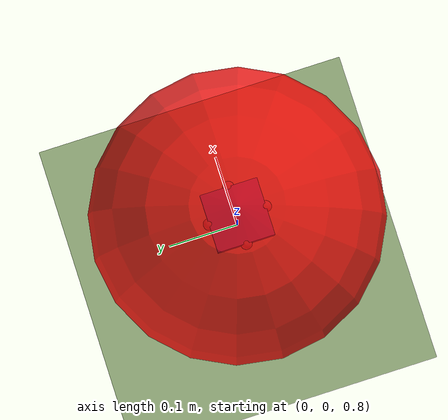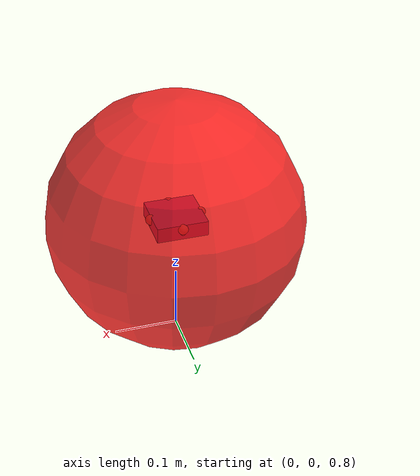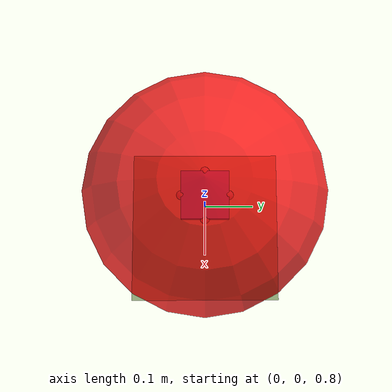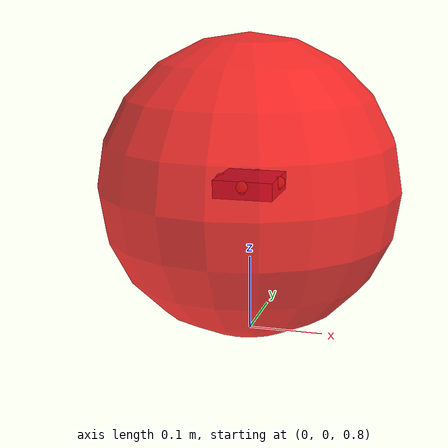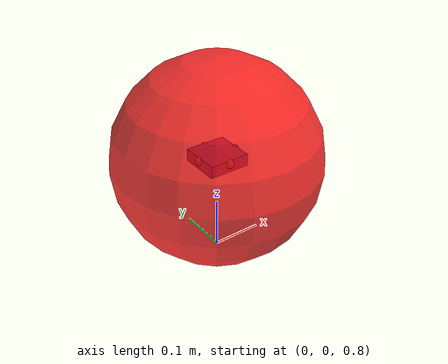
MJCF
<!-- Crazyflie-inspired quadrotor model for MuJoCo
     Mass: 27g, arm length: 39.7mm, T/W: 2.25
     + configuration: rotors at ±X, ±Y
-->
<mujoco model="quadrotor">

  <option gravity="0 0 -9.81" timestep="0.002" integrator="RK4"/>

  <default>
    <geom contype="0" conaffinity="0"/>  <!-- drone has no collision by default -->
  </default>

  <visual>
    <headlight ambient="0.4 0.4 0.4" diffuse="0.8 0.8 0.8" specular="0.1 0.1 0.1"/>
    <rgba haze="0.15 0.25 0.35 1"/>
  </visual>

  <worldbody>
    <!-- Directional light -->
    <light name="sun" directional="true" pos="0 0 5" dir="0 -0.3 -1"
           ambient="0.3 0.3 0.3" diffuse="0.8 0.8 0.8" specular="0.2 0.2 0.2"/>

    <!-- Ground plane (visual only for rendering) -->
    <geom name="floor" type="plane" size="5 5 0.1" rgba="0.6 0.7 0.5 1"
          contype="1" conaffinity="1"/>

    <!-- Target marker (mocap body — move via data.mocap_pos[0]) -->
    <body name="target" pos="0 0 1" mocap="true">
      <geom name="target_geom" type="sphere" size="0.2"
            rgba="1 0 0 0.8" contype="0" conaffinity="0"/>
    </body>

    <!-- Drone body (free joint = 6DOF) -->
    <body name="drone" pos="0 0 1">
      <freejoint name="root"/>
      <inertial mass="0.027"
                 pos="0 0 0"
                 diaginertia="1.4e-5 1.4e-5 2.17e-5"/>

      <!-- Central body -->
      <geom type="box" size="0.04 0.04 0.012" rgba="0.2 0.4 0.8 1"/>

      <!-- Arms (+X, -X, +Y, -Y) -->
      <geom type="capsule" fromto=" 0.0397 0 0  0.0 0 0" size="0.005" rgba="0.5 0.5 0.5 1"/>
      <geom type="capsule" fromto="-0.0397 0 0  0.0 0 0" size="0.005" rgba="0.5 0.5 0.5 1"/>
      <geom type="capsule" fromto="0  0.0397 0  0 0.0 0" size="0.005" rgba="0.5 0.5 0.5 1"/>
      <geom type="capsule" fromto="0 -0.0397 0  0 0.0 0" size="0.005" rgba="0.5 0.5 0.5 1"/>

      <!-- Rotor sites (thrust applied here in body-z direction) -->
      <site name="rotor0" pos=" 0.0397  0.0000 0.005" size="0.008"/>
      <site name="rotor1" pos="-0.0397  0.0000 0.005" size="0.008"/>
      <site name="rotor2" pos=" 0.0000  0.0397 0.005" size="0.008"/>
      <site name="rotor3" pos=" 0.0000 -0.0397 0.005" size="0.008"/>

      <!-- Drone-mounted camera (20° downward tilt, 90° FOV for wider view) -->
      <camera name="drone_cam" pos="0.04 0 0.01" euler="-20 0 0" fovy="90"/>
    </body>
  </worldbody>

  <!-- 4 thrust actuators: force in site's local z (body z when drone is level)    -->
  <!-- Yaw torque ratio: km/kf = 7.94e-12 / 3.16e-10 = 0.02513 m (Crazyflie)       -->
  <!-- m0(+X) & m3(-Y) spin CCW (+yaw), m1(-X) & m2(+Y) spin CW (-yaw)             -->
  <!-- max 0.149N per motor → T/W 2.25 total for 27g drone                          -->
  <actuator>
    <general name="m0" site="rotor0" gear="0 0 1 0 0  0.02513" ctrllimited="true" ctrlrange="0 0.149"/>
    <general name="m1" site="rotor1" gear="0 0 1 0 0 -0.02513" ctrllimited="true" ctrlrange="0 0.149"/>
    <general name="m2" site="rotor2" gear="0 0 1 0 0 -0.02513" ctrllimited="true" ctrlrange="0 0.149"/>
    <general name="m3" site="rotor3" gear="0 0 1 0 0  0.02513" ctrllimited="true" ctrlrange="0 0.149"/>
  </actuator>

  <!-- Sensors -->
  <sensor>
    <framepos   name="pos"    objtype="body" objname="drone"/>
    <framequat  name="quat"   objtype="body" objname="drone"/>
    <framelinvel name="vel"   objtype="body" objname="drone"/>
    <frameangvel name="angvel" objtype="body" objname="drone"/>
  </sensor>

</mujoco>
